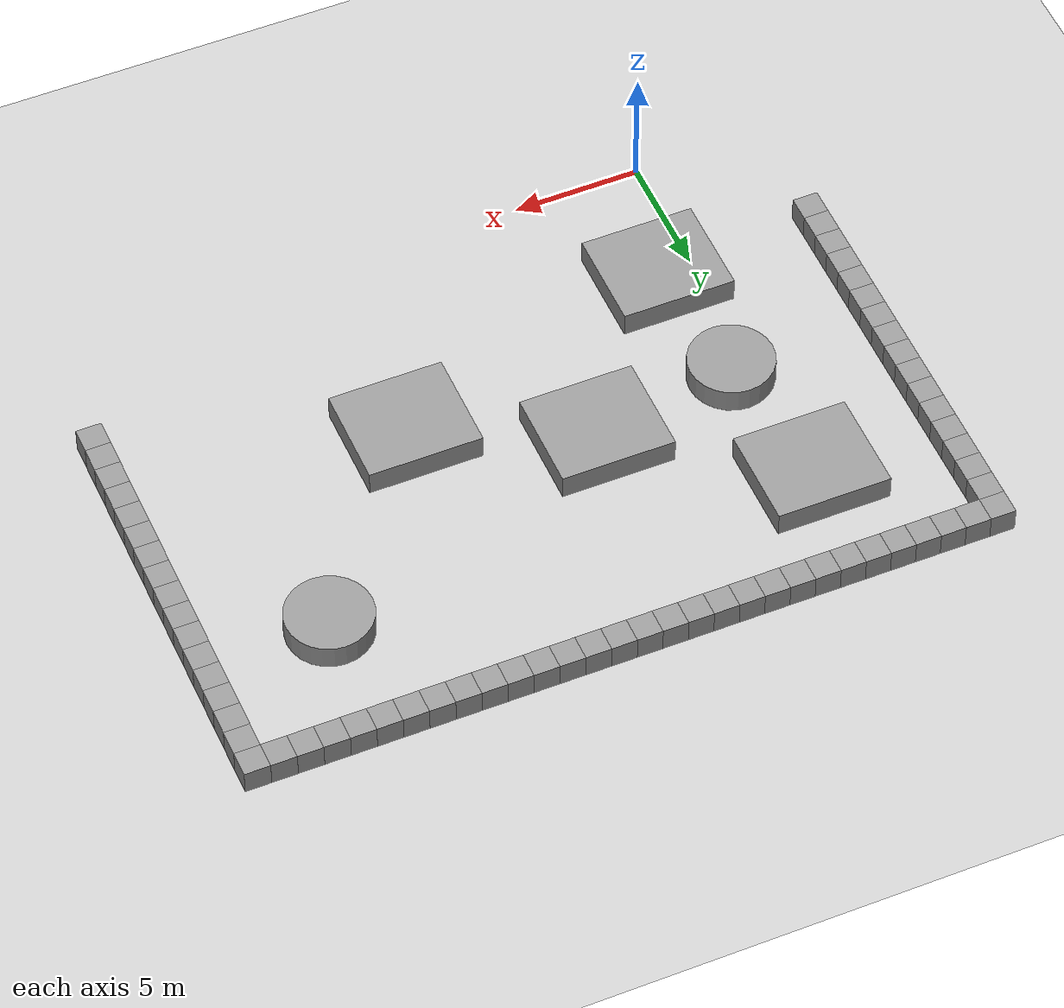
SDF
<sdf version="1.6">
 <world name="default">
  <model name="ground_plane">
   <static>1</static>
   <link name="link">
    <collision name="collision">
     <geometry><plane><normal>0 0 1</normal><size>100 100</size></plane></geometry>
     <surface><friction><ode><mu>100</mu><mu2>50</mu2></ode></friction></surface>
    </collision>
    <visual name="visual">
     <cast_shadows>0</cast_shadows>
     <geometry><plane><normal>0 0 1</normal><size>100 100</size></plane></geometry>
     <material>
      <script><uri>file://media/materials/scripts/gazebo.material</uri><name>Gazebo/Grey</name></script>
     </material>
    </visual>
    <velocity_decay><linear>0</linear><angular>0</angular></velocity_decay>
   </link>
  </model>
  <model name="unit_box_1">
   <pose>-5 5 0.5 0 0 0</pose>
   <static>1</static>
   <link name="link">
    <inertial>
     <mass>1</mass>
     <inertia><ixx>1</ixx><ixy>0</ixy><ixz>0</ixz><iyy>1</iyy><iyz>0</iyz><izz>1</izz></inertia>
    </inertial>
    <collision name="collision"><geometry><box><size>1 1 1</size></box></geometry></collision>
    <visual name="visual">
     <geometry><box><size>1 1 1</size></box></geometry>
     <material>
      <script><uri>file://media/materials/scripts/gazebo.material</uri><name>Gazebo/Grey</name></script>
     </material>
    </visual>
    <velocity_decay><linear>0</linear><angular>0</angular></velocity_decay>
   </link>
   <static>1</static>
  </model>
  <model name="unit_box_61">
   <pose>-5 6 0.5 0 0 0</pose>
   <static>1</static>
   <link name="link">
    <inertial>
     <mass>1</mass>
     <inertia><ixx>1</ixx><ixy>0</ixy><ixz>0</ixz><iyy>1</iyy><iyz>0</iyz><izz>1</izz></inertia>
    </inertial>
    <collision name="collision"><geometry><box><size>1 1 1</size></box></geometry></collision>
    <visual name="visual">
     <geometry><box><size>1 1 1</size></box></geometry>
     <material>
      <script><uri>file://media/materials/scripts/gazebo.material</uri><name>Gazebo/Grey</name></script>
     </material>
    </visual>
    <velocity_decay><linear>0</linear><angular>0</angular></velocity_decay>
   </link>
   <static>1</static>
  </model>
  <model name="unit_box_67">
   <pose>-5 7 0.5 0 0 0</pose>
   <static>1</static>
   <link name="link">
    <inertial>
     <mass>1</mass>
     <inertia><ixx>1</ixx><ixy>0</ixy><ixz>0</ixz><iyy>1</iyy><iyz>0</iyz><izz>1</izz></inertia>
    </inertial>
    <collision name="collision"><geometry><box><size>1 1 1</size></box></geometry></collision>
    <visual name="visual">
     <geometry><box><size>1 1 1</size></box></geometry>
     <material>
      <script><uri>file://media/materials/scripts/gazebo.material</uri><name>Gazebo/Grey</name></script>
     </material>
    </visual>
    <velocity_decay><linear>0</linear><angular>0</angular></velocity_decay>
   </link>
   <static>1</static>
  </model>
  <model name="unit_box_68">
   <pose>-5 8 0.5 0 0 0</pose>
   <static>1</static>
   <link name="link">
    <inertial>
     <mass>1</mass>
     <inertia><ixx>1</ixx><ixy>0</ixy><ixz>0</ixz><iyy>1</iyy><iyz>0</iyz><izz>1</izz></inertia>
    </inertial>
    <collision name="collision"><geometry><box><size>1 1 1</size></box></geometry></collision>
    <visual name="visual">
     <geometry><box><size>1 1 1</size></box></geometry>
     <material>
      <script><uri>file://media/materials/scripts/gazebo.material</uri><name>Gazebo/Grey</name></script>
     </material>
    </visual>
    <velocity_decay><linear>0</linear><angular>0</angular></velocity_decay>
   </link>
   <static>1</static>
  </model>
  <model name="unit_box_69">
   <pose>-5 9 0.5 0 0 0</pose>
   <static>1</static>
   <link name="link">
    <inertial>
     <mass>1</mass>
     <inertia><ixx>1</ixx><ixy>0</ixy><ixz>0</ixz><iyy>1</iyy><iyz>0</iyz><izz>1</izz></inertia>
    </inertial>
    <collision name="collision"><geometry><box><size>1 1 1</size></box></geometry></collision>
    <visual name="visual">
     <geometry><box><size>1 1 1</size></box></geometry>
     <material>
      <script><uri>file://media/materials/scripts/gazebo.material</uri><name>Gazebo/Grey</name></script>
     </material>
    </visual>
    <velocity_decay><linear>0</linear><angular>0</angular></velocity_decay>
   </link>
   <static>1</static>
  </model>
  <model name="unit_box_72">
   <pose>-5 10 0.5 0 0 0</pose>
   <static>1</static>
   <link name="link">
    <inertial>
     <mass>1</mass>
     <inertia><ixx>1</ixx><ixy>0</ixy><ixz>0</ixz><iyy>1</iyy><iyz>0</iyz><izz>1</izz></inertia>
    </inertial>
    <collision name="collision"><geometry><box><size>1 1 1</size></box></geometry></collision>
    <visual name="visual">
     <geometry><box><size>1 1 1</size></box></geometry>
     <material>
      <script><uri>file://media/materials/scripts/gazebo.material</uri><name>Gazebo/Grey</name></script>
     </material>
    </visual>
    <velocity_decay><linear>0</linear><angular>0</angular></velocity_decay>
   </link>
   <static>1</static>
  </model>
  <model name="unit_box_73">
   <pose>-5 11 0.5 0 0 0</pose>
   <static>1</static>
   <link name="link">
    <inertial>
     <mass>1</mass>
     <inertia><ixx>1</ixx><ixy>0</ixy><ixz>0</ixz><iyy>1</iyy><iyz>0</iyz><izz>1</izz></inertia>
    </inertial>
    <collision name="collision"><geometry><box><size>1 1 1</size></box></geometry></collision>
    <visual name="visual">
     <geometry><box><size>1 1 1</size></box></geometry>
     <material>
      <script><uri>file://media/materials/scripts/gazebo.material</uri><name>Gazebo/Grey</name></script>
     </material>
    </visual>
    <velocity_decay><linear>0</linear><angular>0</angular></velocity_decay>
   </link>
   <static>1</static>
  </model>
  <model name="unit_box_74">
   <pose>-5 12 0.5 0 0 0</pose>
   <static>1</static>
   <link name="link">
    <inertial>
     <mass>1</mass>
     <inertia><ixx>1</ixx><ixy>0</ixy><ixz>0</ixz><iyy>1</iyy><iyz>0</iyz><izz>1</izz></inertia>
    </inertial>
    <collision name="collision"><geometry><box><size>1 1 1</size></box></geometry></collision>
    <visual name="visual">
     <geometry><box><size>1 1 1</size></box></geometry>
     <material>
      <script><uri>file://media/materials/scripts/gazebo.material</uri><name>Gazebo/Grey</name></script>
     </material>
    </visual>
    <velocity_decay><linear>0</linear><angular>0</angular></velocity_decay>
   </link>
   <static>1</static>
  </model>
  <model name="unit_box_75">
   <pose>-5 13 0.5 0 0 0</pose>
   <static>1</static>
   <link name="link">
    <inertial>
     <mass>1</mass>
     <inertia><ixx>1</ixx><ixy>0</ixy><ixz>0</ixz><iyy>1</iyy><iyz>0</iyz><izz>1</izz></inertia>
    </inertial>
    <collision name="collision"><geometry><box><size>1 1 1</size></box></geometry></collision>
    <visual name="visual">
     <geometry><box><size>1 1 1</size></box></geometry>
     <material>
      <script><uri>file://media/materials/scripts/gazebo.material</uri><name>Gazebo/Grey</name></script>
     </material>
    </visual>
    <velocity_decay><linear>0</linear><angular>0</angular></velocity_decay>
   </link>
   <static>1</static>
  </model>
  <model name="unit_box_76">
   <pose>-5 14 0.5 0 0 0</pose>
   <static>1</static>
   <link name="link">
    <inertial>
     <mass>1</mass>
     <inertia><ixx>1</ixx><ixy>0</ixy><ixz>0</ixz><iyy>1</iyy><iyz>0</iyz><izz>1</izz></inertia>
    </inertial>
    <collision name="collision"><geometry><box><size>1 1 1</size></box></geometry></collision>
    <visual name="visual">
     <geometry><box><size>1 1 1</size></box></geometry>
     <material>
      <script><uri>file://media/materials/scripts/gazebo.material</uri><name>Gazebo/Grey</name></script>
     </material>
    </visual>
    <velocity_decay><linear>0</linear><angular>0</angular></velocity_decay>
   </link>
   <static>1</static>
  </model>
  <model name="unit_box_77">
   <pose>-5 15 0.5 0 0 0</pose>
   <static>1</static>
   <link name="link">
    <inertial>
     <mass>1</mass>
     <inertia><ixx>1</ixx><ixy>0</ixy><ixz>0</ixz><iyy>1</iyy><iyz>0</iyz><izz>1</izz></inertia>
    </inertial>
    <collision name="collision"><geometry><box><size>1 1 1</size></box></geometry></collision>
    <visual name="visual">
     <geometry><box><size>1 1 1</size></box></geometry>
     <material>
      <script><uri>file://media/materials/scripts/gazebo.material</uri><name>Gazebo/Grey</name></script>
     </material>
    </visual>
    <velocity_decay><linear>0</linear><angular>0</angular></velocity_decay>
   </link>
   <static>1</static>
  </model>
  <model name="unit_box_78">
   <pose>-5 16 0.5 0 0 0</pose>
   <static>1</static>
   <link name="link">
    <inertial>
     <mass>1</mass>
     <inertia><ixx>1</ixx><ixy>0</ixy><ixz>0</ixz><iyy>1</iyy><iyz>0</iyz><izz>1</izz></inertia>
    </inertial>
    <collision name="collision"><geometry><box><size>1 1 1</size></box></geometry></collision>
    <visual name="visual">
     <geometry><box><size>1 1 1</size></box></geometry>
     <material>
      <script><uri>file://media/materials/scripts/gazebo.material</uri><name>Gazebo/Grey</name></script>
     </material>
    </visual>
    <velocity_decay><linear>0</linear><angular>0</angular></velocity_decay>
   </link>
   <static>1</static>
  </model>
  <model name="unit_box_79">
   <pose>-5 17 0.5 0 0 0</pose>
   <static>1</static>
   <link name="link">
    <inertial>
     <mass>1</mass>
     <inertia><ixx>1</ixx><ixy>0</ixy><ixz>0</ixz><iyy>1</iyy><iyz>0</iyz><izz>1</izz></inertia>
    </inertial>
    <collision name="collision"><geometry><box><size>1 1 1</size></box></geometry></collision>
    <visual name="visual">
     <geometry><box><size>1 1 1</size></box></geometry>
     <material>
      <script><uri>file://media/materials/scripts/gazebo.material</uri><name>Gazebo/Grey</name></script>
     </material>
    </visual>
    <velocity_decay><linear>0</linear><angular>0</angular></velocity_decay>
   </link>
   <static>1</static>
  </model>
  <model name="unit_box_80">
   <pose>-5 18 0.5 0 0 0</pose>
   <static>1</static>
   <link name="link">
    <inertial>
     <mass>1</mass>
     <inertia><ixx>1</ixx><ixy>0</ixy><ixz>0</ixz><iyy>1</iyy><iyz>0</iyz><izz>1</izz></inertia>
    </inertial>
    <collision name="collision"><geometry><box><size>1 1 1</size></box></geometry></collision>
    <visual name="visual">
     <geometry><box><size>1 1 1</size></box></geometry>
     <material>
      <script><uri>file://media/materials/scripts/gazebo.material</uri><name>Gazebo/Grey</name></script>
     </material>
    </visual>
    <velocity_decay><linear>0</linear><angular>0</angular></velocity_decay>
   </link>
   <static>1</static>
  </model>
  <model name="unit_box_96">
   <pose>-5 19 0.5 0 0 0</pose>
   <static>1</static>
   <link name="link">
    <inertial>
     <mass>1</mass>
     <inertia><ixx>1</ixx><ixy>0</ixy><ixz>0</ixz><iyy>1</iyy><iyz>0</iyz><izz>1</izz></inertia>
    </inertial>
    <collision name="collision"><geometry><box><size>1 1 1</size></box></geometry></collision>
    <visual name="visual">
     <geometry><box><size>1 1 1</size></box></geometry>
     <material>
      <script><uri>file://media/materials/scripts/gazebo.material</uri><name>Gazebo/Grey</name></script>
     </material>
    </visual>
    <velocity_decay><linear>0</linear><angular>0</angular></velocity_decay>
   </link>
   <static>1</static>
  </model>
  <model name="unit_box_97">
   <pose>-5 20 0.5 0 0 0</pose>
   <static>1</static>
   <link name="link">
    <inertial>
     <mass>1</mass>
     <inertia><ixx>1</ixx><ixy>0</ixy><ixz>0</ixz><iyy>1</iyy><iyz>0</iyz><izz>1</izz></inertia>
    </inertial>
    <collision name="collision"><geometry><box><size>1 1 1</size></box></geometry></collision>
    <visual name="visual">
     <geometry><box><size>1 1 1</size></box></geometry>
     <material>
      <script><uri>file://media/materials/scripts/gazebo.material</uri><name>Gazebo/Grey</name></script>
     </material>
    </visual>
    <velocity_decay><linear>0</linear><angular>0</angular></velocity_decay>
   </link>
   <static>1</static>
  </model>
  <model name="unit_box_98">
   <pose>-5 21 0.5 0 0 0</pose>
   <static>1</static>
   <link name="link">
    <inertial>
     <mass>1</mass>
     <inertia><ixx>1</ixx><ixy>0</ixy><ixz>0</ixz><iyy>1</iyy><iyz>0</iyz><izz>1</izz></inertia>
    </inertial>
    <collision name="collision"><geometry><box><size>1 1 1</size></box></geometry></collision>
    <visual name="visual">
     <geometry><box><size>1 1 1</size></box></geometry>
     <material>
      <script><uri>file://media/materials/scripts/gazebo.material</uri><name>Gazebo/Grey</name></script>
     </material>
    </visual>
    <velocity_decay><linear>0</linear><angular>0</angular></velocity_decay>
   </link>
   <static>1</static>
  </model>
  <model name="unit_box_99">
   <pose>-4 21 0.5 0 0 0</pose>
   <static>1</static>
   <link name="link">
    <inertial>
     <mass>1</mass>
     <inertia><ixx>1</ixx><ixy>0</ixy><ixz>0</ixz><iyy>1</iyy><iyz>0</iyz><izz>1</izz></inertia>
    </inertial>
    <collision name="collision"><geometry><box><size>1 1 1</size></box></geometry></collision>
    <visual name="visual">
     <geometry><box><size>1 1 1</size></box></geometry>
     <material>
      <script><uri>file://media/materials/scripts/gazebo.material</uri><name>Gazebo/Grey</name></script>
     </material>
    </visual>
    <velocity_decay><linear>0</linear><angular>0</angular></velocity_decay>
   </link>
   <static>1</static>
  </model>
  <model name="unit_box_100">
   <pose>-3 21 0.5 0 0 0</pose>
   <static>1</static>
   <link name="link">
    <inertial>
     <mass>1</mass>
     <inertia><ixx>1</ixx><ixy>0</ixy><ixz>0</ixz><iyy>1</iyy><iyz>0</iyz><izz>1</izz></inertia>
    </inertial>
    <collision name="collision"><geometry><box><size>1 1 1</size></box></geometry></collision>
    <visual name="visual">
     <geometry><box><size>1 1 1</size></box></geometry>
     <material>
      <script><uri>file://media/materials/scripts/gazebo.material</uri><name>Gazebo/Grey</name></script>
     </material>
    </visual>
    <velocity_decay><linear>0</linear><angular>0</angular></velocity_decay>
   </link>
   <static>1</static>
  </model>
  <model name="unit_box_101">
   <pose>-2 21 0.5 0 0 0</pose>
   <static>1</static>
   <link name="link">
    <inertial>
     <mass>1</mass>
     <inertia><ixx>1</ixx><ixy>0</ixy><ixz>0</ixz><iyy>1</iyy><iyz>0</iyz><izz>1</izz></inertia>
    </inertial>
    <collision name="collision"><geometry><box><size>1 1 1</size></box></geometry></collision>
    <visual name="visual">
     <geometry><box><size>1 1 1</size></box></geometry>
     <material>
      <script><uri>file://media/materials/scripts/gazebo.material</uri><name>Gazebo/Grey</name></script>
     </material>
    </visual>
    <velocity_decay><linear>0</linear><angular>0</angular></velocity_decay>
   </link>
   <static>1</static>
  </model>
  <model name="unit_box_102">
   <pose>-1 21 0.5 0 0 0</pose>
   <static>1</static>
   <link name="link">
    <inertial>
     <mass>1</mass>
     <inertia><ixx>1</ixx><ixy>0</ixy><ixz>0</ixz><iyy>1</iyy><iyz>0</iyz><izz>1</izz></inertia>
    </inertial>
    <collision name="collision"><geometry><box><size>1 1 1</size></box></geometry></collision>
    <visual name="visual">
     <geometry><box><size>1 1 1</size></box></geometry>
     <material>
      <script><uri>file://media/materials/scripts/gazebo.material</uri><name>Gazebo/Grey</name></script>
     </material>
    </visual>
    <velocity_decay><linear>0</linear><angular>0</angular></velocity_decay>
   </link>
   <static>1</static>
  </model>
  <model name="unit_box_103">
   <pose>0 21 0.5 0 0 0</pose>
   <static>1</static>
   <link name="link">
    <inertial>
     <mass>1</mass>
     <inertia><ixx>1</ixx><ixy>0</ixy><ixz>0</ixz><iyy>1</iyy><iyz>0</iyz><izz>1</izz></inertia>
    </inertial>
    <collision name="collision"><geometry><box><size>1 1 1</size></box></geometry></collision>
    <visual name="visual">
     <geometry><box><size>1 1 1</size></box></geometry>
     <material>
      <script><uri>file://media/materials/scripts/gazebo.material</uri><name>Gazebo/Grey</name></script>
     </material>
    </visual>
    <velocity_decay><linear>0</linear><angular>0</angular></velocity_decay>
   </link>
   <static>1</static>
  </model>
  <model name="unit_box_104">
   <pose>1 21 0.5 0 0 0</pose>
   <static>1</static>
   <link name="link">
    <inertial>
     <mass>1</mass>
     <inertia><ixx>1</ixx><ixy>0</ixy><ixz>0</ixz><iyy>1</iyy><iyz>0</iyz><izz>1</izz></inertia>
    </inertial>
    <collision name="collision"><geometry><box><size>1 1 1</size></box></geometry></collision>
    <visual name="visual">
     <geometry><box><size>1 1 1</size></box></geometry>
     <material>
      <script><uri>file://media/materials/scripts/gazebo.material</uri><name>Gazebo/Grey</name></script>
     </material>
    </visual>
    <velocity_decay><linear>0</linear><angular>0</angular></velocity_decay>
   </link>
   <static>1</static>
  </model>
  <model name="unit_box_105">
   <pose>2 21 0.5 0 0 0</pose>
   <static>1</static>
   <link name="link">
    <inertial>
     <mass>1</mass>
     <inertia><ixx>1</ixx><ixy>0</ixy><ixz>0</ixz><iyy>1</iyy><iyz>0</iyz><izz>1</izz></inertia>
    </inertial>
    <collision name="collision"><geometry><box><size>1 1 1</size></box></geometry></collision>
    <visual name="visual">
     <geometry><box><size>1 1 1</size></box></geometry>
     <material>
      <script><uri>file://media/materials/scripts/gazebo.material</uri><name>Gazebo/Grey</name></script>
     </material>
    </visual>
    <velocity_decay><linear>0</linear><angular>0</angular></velocity_decay>
   </link>
   <static>1</static>
  </model>
  <model name="unit_box_106">
   <pose>3 21 0.5 0 0 0</pose>
   <static>1</static>
   <link name="link">
    <inertial>
     <mass>1</mass>
     <inertia><ixx>1</ixx><ixy>0</ixy><ixz>0</ixz><iyy>1</iyy><iyz>0</iyz><izz>1</izz></inertia>
    </inertial>
    <collision name="collision"><geometry><box><size>1 1 1</size></box></geometry></collision>
    <visual name="visual">
     <geometry><box><size>1 1 1</size></box></geometry>
     <material>
      <script><uri>file://media/materials/scripts/gazebo.material</uri><name>Gazebo/Grey</name></script>
     </material>
    </visual>
    <velocity_decay><linear>0</linear><angular>0</angular></velocity_decay>
   </link>
   <static>1</static>
  </model>
  <model name="unit_box_107">
   <pose>4 21 0.5 0 0 0</pose>
   <static>1</static>
   <link name="link">
    <inertial>
     <mass>1</mass>
     <inertia><ixx>1</ixx><ixy>0</ixy><ixz>0</ixz><iyy>1</iyy><iyz>0</iyz><izz>1</izz></inertia>
    </inertial>
    <collision name="collision"><geometry><box><size>1 1 1</size></box></geometry></collision>
    <visual name="visual">
     <geometry><box><size>1 1 1</size></box></geometry>
     <material>
      <script><uri>file://media/materials/scripts/gazebo.material</uri><name>Gazebo/Grey</name></script>
     </material>
    </visual>
    <velocity_decay><linear>0</linear><angular>0</angular></velocity_decay>
   </link>
   <static>1</static>
  </model>
  <model name="unit_box_108">
   <pose>5 21 0.5 0 0 0</pose>
   <static>1</static>
   <link name="link">
    <inertial>
     <mass>1</mass>
     <inertia><ixx>1</ixx><ixy>0</ixy><ixz>0</ixz><iyy>1</iyy><iyz>0</iyz><izz>1</izz></inertia>
    </inertial>
    <collision name="collision"><geometry><box><size>1 1 1</size></box></geometry></collision>
    <visual name="visual">
     <geometry><box><size>1 1 1</size></box></geometry>
     <material>
      <script><uri>file://media/materials/scripts/gazebo.material</uri><name>Gazebo/Grey</name></script>
     </material>
    </visual>
    <velocity_decay><linear>0</linear><angular>0</angular></velocity_decay>
   </link>
   <static>1</static>
  </model>
  <model name="unit_box_109">
   <pose>6 21 0.5 0 0 0</pose>
   <static>1</static>
   <link name="link">
    <inertial>
     <mass>1</mass>
     <inertia><ixx>1</ixx><ixy>0</ixy><ixz>0</ixz><iyy>1</iyy><iyz>0</iyz><izz>1</izz></inertia>
    </inertial>
    <collision name="collision"><geometry><box><size>1 1 1</size></box></geometry></collision>
    <visual name="visual">
     <geometry><box><size>1 1 1</size></box></geometry>
     <material>
      <script><uri>file://media/materials/scripts/gazebo.material</uri><name>Gazebo/Grey</name></script>
     </material>
    </visual>
    <velocity_decay><linear>0</linear><angular>0</angular></velocity_decay>
   </link>
   <static>1</static>
  </model>
  <model name="unit_box_110">
   <pose>7 21 0.5 0 0 0</pose>
   <static>1</static>
   <link name="link">
    <inertial>
     <mass>1</mass>
     <inertia><ixx>1</ixx><ixy>0</ixy><ixz>0</ixz><iyy>1</iyy><iyz>0</iyz><izz>1</izz></inertia>
    </inertial>
    <collision name="collision"><geometry><box><size>1 1 1</size></box></geometry></collision>
    <visual name="visual">
     <geometry><box><size>1 1 1</size></box></geometry>
     <material>
      <script><uri>file://media/materials/scripts/gazebo.material</uri><name>Gazebo/Grey</name></script>
     </material>
    </visual>
    <velocity_decay><linear>0</linear><angular>0</angular></velocity_decay>
   </link>
   <static>1</static>
  </model>
  <model name="unit_box_111">
   <pose>8 21 0.5 0 0 0</pose>
   <static>1</static>
   <link name="link">
    <inertial>
     <mass>1</mass>
     <inertia><ixx>1</ixx><ixy>0</ixy><ixz>0</ixz><iyy>1</iyy><iyz>0</iyz><izz>1</izz></inertia>
    </inertial>
    <collision name="collision"><geometry><box><size>1 1 1</size></box></geometry></collision>
    <visual name="visual">
     <geometry><box><size>1 1 1</size></box></geometry>
     <material>
      <script><uri>file://media/materials/scripts/gazebo.material</uri><name>Gazebo/Grey</name></script>
     </material>
    </visual>
    <velocity_decay><linear>0</linear><angular>0</angular></velocity_decay>
   </link>
   <static>1</static>
  </model>
  <model name="unit_box_112">
   <pose>9 21 0.5 0 0 0</pose>
   <static>1</static>
   <link name="link">
    <inertial>
     <mass>1</mass>
     <inertia><ixx>1</ixx><ixy>0</ixy><ixz>0</ixz><iyy>1</iyy><iyz>0</iyz><izz>1</izz></inertia>
    </inertial>
    <collision name="collision"><geometry><box><size>1 1 1</size></box></geometry></collision>
    <visual name="visual">
     <geometry><box><size>1 1 1</size></box></geometry>
     <material>
      <script><uri>file://media/materials/scripts/gazebo.material</uri><name>Gazebo/Grey</name></script>
     </material>
    </visual>
    <velocity_decay><linear>0</linear><angular>0</angular></velocity_decay>
   </link>
   <static>1</static>
  </model>
  <model name="unit_box_113">
   <pose>10 21 0.5 0 0 0</pose>
   <static>1</static>
   <link name="link">
    <inertial>
     <mass>1</mass>
     <inertia><ixx>1</ixx><ixy>0</ixy><ixz>0</ixz><iyy>1</iyy><iyz>0</iyz><izz>1</izz></inertia>
    </inertial>
    <collision name="collision"><geometry><box><size>1 1 1</size></box></geometry></collision>
    <visual name="visual">
     <geometry><box><size>1 1 1</size></box></geometry>
     <material>
      <script><uri>file://media/materials/scripts/gazebo.material</uri><name>Gazebo/Grey</name></script>
     </material>
    </visual>
    <velocity_decay><linear>0</linear><angular>0</angular></velocity_decay>
   </link>
   <static>1</static>
  </model>
  <model name="unit_box_114">
   <pose>11 21 0.5 0 0 0</pose>
   <static>1</static>
   <link name="link">
    <inertial>
     <mass>1</mass>
     <inertia><ixx>1</ixx><ixy>0</ixy><ixz>0</ixz><iyy>1</iyy><iyz>0</iyz><izz>1</izz></inertia>
    </inertial>
    <collision name="collision"><geometry><box><size>1 1 1</size></box></geometry></collision>
    <visual name="visual">
     <geometry><box><size>1 1 1</size></box></geometry>
     <material>
      <script><uri>file://media/materials/scripts/gazebo.material</uri><name>Gazebo/Grey</name></script>
     </material>
    </visual>
    <velocity_decay><linear>0</linear><angular>0</angular></velocity_decay>
   </link>
   <static>1</static>
  </model>
  <model name="unit_box_115">
   <pose>12 21 0.5 0 0 0</pose>
   <static>1</static>
   <link name="link">
    <inertial>
     <mass>1</mass>
     <inertia><ixx>1</ixx><ixy>0</ixy><ixz>0</ixz><iyy>1</iyy><iyz>0</iyz><izz>1</izz></inertia>
    </inertial>
    <collision name="collision"><geometry><box><size>1 1 1</size></box></geometry></collision>
    <visual name="visual">
     <geometry><box><size>1 1 1</size></box></geometry>
     <material>
      <script><uri>file://media/materials/scripts/gazebo.material</uri><name>Gazebo/Grey</name></script>
     </material>
    </visual>
    <velocity_decay><linear>0</linear><angular>0</angular></velocity_decay>
   </link>
   <static>1</static>
  </model>
  <model name="unit_box_116">
   <pose>13 21 0.5 0 0 0</pose>
   <static>1</static>
   <link name="link">
    <inertial>
     <mass>1</mass>
     <inertia><ixx>1</ixx><ixy>0</ixy><ixz>0</ixz><iyy>1</iyy><iyz>0</iyz><izz>1</izz></inertia>
    </inertial>
    <collision name="collision"><geometry><box><size>1 1 1</size></box></geometry></collision>
    <visual name="visual">
     <geometry><box><size>1 1 1</size></box></geometry>
     <material>
      <script><uri>file://media/materials/scripts/gazebo.material</uri><name>Gazebo/Grey</name></script>
     </material>
    </visual>
    <velocity_decay><linear>0</linear><angular>0</angular></velocity_decay>
   </link>
   <static>1</static>
  </model>
  <model name="unit_box_121">
   <pose>14 21 0.5 0 0 0</pose>
   <static>1</static>
   <link name="link">
    <inertial>
     <mass>1</mass>
     <inertia><ixx>1</ixx><ixy>0</ixy><ixz>0</ixz><iyy>1</iyy><iyz>0</iyz><izz>1</izz></inertia>
    </inertial>
    <collision name="collision"><geometry><box><size>1 1 1</size></box></geometry></collision>
    <visual name="visual">
     <geometry><box><size>1 1 1</size></box></geometry>
     <material>
      <script><uri>file://media/materials/scripts/gazebo.material</uri><name>Gazebo/Grey</name></script>
     </material>
    </visual>
    <velocity_decay><linear>0</linear><angular>0</angular></velocity_decay>
   </link>
   <static>1</static>
  </model>
  <model name="unit_box_134">
   <pose>15 21 0.5 0 0 0</pose>
   <static>1</static>
   <link name="link">
    <inertial>
     <mass>1</mass>
     <inertia><ixx>1</ixx><ixy>0</ixy><ixz>0</ixz><iyy>1</iyy><iyz>0</iyz><izz>1</izz></inertia>
    </inertial>
    <collision name="collision"><geometry><box><size>1 1 1</size></box></geometry></collision>
    <visual name="visual">
     <geometry><box><size>1 1 1</size></box></geometry>
     <material>
      <script><uri>file://media/materials/scripts/gazebo.material</uri><name>Gazebo/Grey</name></script>
     </material>
    </visual>
    <velocity_decay><linear>0</linear><angular>0</angular></velocity_decay>
   </link>
   <static>1</static>
  </model>
  <model name="unit_box_135">
   <pose>16 21 0.5 0 0 0</pose>
   <static>1</static>
   <link name="link">
    <inertial>
     <mass>1</mass>
     <inertia><ixx>1</ixx><ixy>0</ixy><ixz>0</ixz><iyy>1</iyy><iyz>0</iyz><izz>1</izz></inertia>
    </inertial>
    <collision name="collision"><geometry><box><size>1 1 1</size></box></geometry></collision>
    <visual name="visual">
     <geometry><box><size>1 1 1</size></box></geometry>
     <material>
      <script><uri>file://media/materials/scripts/gazebo.material</uri><name>Gazebo/Grey</name></script>
     </material>
    </visual>
    <velocity_decay><linear>0</linear><angular>0</angular></velocity_decay>
   </link>
   <static>1</static>
  </model>
  <model name="unit_box_136">
   <pose>17 21 0.5 0 0 0</pose>
   <static>1</static>
   <link name="link">
    <inertial>
     <mass>1</mass>
     <inertia><ixx>1</ixx><ixy>0</ixy><ixz>0</ixz><iyy>1</iyy><iyz>0</iyz><izz>1</izz></inertia>
    </inertial>
    <collision name="collision"><geometry><box><size>1 1 1</size></box></geometry></collision>
    <visual name="visual">
     <geometry><box><size>1 1 1</size></box></geometry>
     <material>
      <script><uri>file://media/materials/scripts/gazebo.material</uri><name>Gazebo/Grey</name></script>
     </material>
    </visual>
    <velocity_decay><linear>0</linear><angular>0</angular></velocity_decay>
   </link>
   <static>1</static>
  </model>
  <model name="unit_box_137">
   <pose>18 21 0.5 0 0 0</pose>
   <static>1</static>
   <link name="link">
    <inertial>
     <mass>1</mass>
     <inertia><ixx>1</ixx><ixy>0</ixy><ixz>0</ixz><iyy>1</iyy><iyz>0</iyz><izz>1</izz></inertia>
    </inertial>
    <collision name="collision"><geometry><box><size>1 1 1</size></box></geometry></collision>
    <visual name="visual">
     <geometry><box><size>1 1 1</size></box></geometry>
     <material>
      <script><uri>file://media/materials/scripts/gazebo.material</uri><name>Gazebo/Grey</name></script>
     </material>
    </visual>
    <velocity_decay><linear>0</linear><angular>0</angular></velocity_decay>
   </link>
   <static>1</static>
  </model>
  <model name="unit_box_146">
   <pose>19 21 0.5 0 0 0</pose>
   <static>1</static>
   <link name="link">
    <inertial>
     <mass>1</mass>
     <inertia><ixx>1</ixx><ixy>0</ixy><ixz>0</ixz><iyy>1</iyy><iyz>0</iyz><izz>1</izz></inertia>
    </inertial>
    <collision name="collision"><geometry><box><size>1 1 1</size></box></geometry></collision>
    <visual name="visual">
     <geometry><box><size>1 1 1</size></box></geometry>
     <material>
      <script><uri>file://media/materials/scripts/gazebo.material</uri><name>Gazebo/Grey</name></script>
     </material>
    </visual>
    <velocity_decay><linear>0</linear><angular>0</angular></velocity_decay>
   </link>
   <static>1</static>
  </model>
  <model name="unit_box_147">
   <pose>20 21 0.5 0 0 0</pose>
   <static>1</static>
   <link name="link">
    <inertial>
     <mass>1</mass>
     <inertia><ixx>1</ixx><ixy>0</ixy><ixz>0</ixz><iyy>1</iyy><iyz>0</iyz><izz>1</izz></inertia>
    </inertial>
    <collision name="collision"><geometry><box><size>1 1 1</size></box></geometry></collision>
    <visual name="visual">
     <geometry><box><size>1 1 1</size></box></geometry>
     <material>
      <script><uri>file://media/materials/scripts/gazebo.material</uri><name>Gazebo/Grey</name></script>
     </material>
    </visual>
    <velocity_decay><linear>0</linear><angular>0</angular></velocity_decay>
   </link>
   <static>1</static>
  </model>
  <model name="unit_box_148">
   <pose>21 21 0.5 0 0 0</pose>
   <static>1</static>
   <link name="link">
    <inertial>
     <mass>1</mass>
     <inertia><ixx>1</ixx><ixy>0</ixy><ixz>0</ixz><iyy>1</iyy><iyz>0</iyz><izz>1</izz></inertia>
    </inertial>
    <collision name="collision"><geometry><box><size>1 1 1</size></box></geometry></collision>
    <visual name="visual">
     <geometry><box><size>1 1 1</size></box></geometry>
     <material>
      <script><uri>file://media/materials/scripts/gazebo.material</uri><name>Gazebo/Grey</name></script>
     </material>
    </visual>
    <velocity_decay><linear>0</linear><angular>0</angular></velocity_decay>
   </link>
   <static>1</static>
  </model>
  <model name="unit_box_150">
   <pose>22 21 0.5 0 0 0</pose>
   <static>1</static>
   <link name="link">
    <inertial>
     <mass>1</mass>
     <inertia><ixx>1</ixx><ixy>0</ixy><ixz>0</ixz><iyy>1</iyy><iyz>0</iyz><izz>1</izz></inertia>
    </inertial>
    <collision name="collision"><geometry><box><size>1 1 1</size></box></geometry></collision>
    <visual name="visual">
     <geometry><box><size>1 1 1</size></box></geometry>
     <material>
      <script><uri>file://media/materials/scripts/gazebo.material</uri><name>Gazebo/Grey</name></script>
     </material>
    </visual>
    <velocity_decay><linear>0</linear><angular>0</angular></velocity_decay>
   </link>
   <static>1</static>
  </model>
  <model name="unit_box_151">
   <pose>23 21 0.5 0 0 0</pose>
   <static>1</static>
   <link name="link">
    <inertial>
     <mass>1</mass>
     <inertia><ixx>1</ixx><ixy>0</ixy><ixz>0</ixz><iyy>1</iyy><iyz>0</iyz><izz>1</izz></inertia>
    </inertial>
    <collision name="collision"><geometry><box><size>1 1 1</size></box></geometry></collision>
    <visual name="visual">
     <geometry><box><size>1 1 1</size></box></geometry>
     <material>
      <script><uri>file://media/materials/scripts/gazebo.material</uri><name>Gazebo/Grey</name></script>
     </material>
    </visual>
    <velocity_decay><linear>0</linear><angular>0</angular></velocity_decay>
   </link>
   <static>1</static>
  </model>
  <model name="unit_box_152">
   <pose>24 21 0.5 0 0 0</pose>
   <static>1</static>
   <link name="link">
    <inertial>
     <mass>1</mass>
     <inertia><ixx>1</ixx><ixy>0</ixy><ixz>0</ixz><iyy>1</iyy><iyz>0</iyz><izz>1</izz></inertia>
    </inertial>
    <collision name="collision"><geometry><box><size>1 1 1</size></box></geometry></collision>
    <visual name="visual">
     <geometry><box><size>1 1 1</size></box></geometry>
     <material>
      <script><uri>file://media/materials/scripts/gazebo.material</uri><name>Gazebo/Grey</name></script>
     </material>
    </visual>
    <velocity_decay><linear>0</linear><angular>0</angular></velocity_decay>
   </link>
   <static>1</static>
  </model>
  <model name="unit_box_153">
   <pose>24 20 0.5 0 0 0</pose>
   <static>1</static>
   <link name="link">
    <inertial>
     <mass>1</mass>
     <inertia><ixx>1</ixx><ixy>0</ixy><ixz>0</ixz><iyy>1</iyy><iyz>0</iyz><izz>1</izz></inertia>
    </inertial>
    <collision name="collision"><geometry><box><size>1 1 1</size></box></geometry></collision>
    <visual name="visual">
     <geometry><box><size>1 1 1</size></box></geometry>
     <material>
      <script><uri>file://media/materials/scripts/gazebo.material</uri><name>Gazebo/Grey</name></script>
     </material>
    </visual>
    <velocity_decay><linear>0</linear><angular>0</angular></velocity_decay>
   </link>
   <static>1</static>
  </model>
  <model name="unit_box_154">
   <pose>24 19 0.5 0 0 0</pose>
   <static>1</static>
   <link name="link">
    <inertial>
     <mass>1</mass>
     <inertia><ixx>1</ixx><ixy>0</ixy><ixz>0</ixz><iyy>1</iyy><iyz>0</iyz><izz>1</izz></inertia>
    </inertial>
    <collision name="collision"><geometry><box><size>1 1 1</size></box></geometry></collision>
    <visual name="visual">
     <geometry><box><size>1 1 1</size></box></geometry>
     <material>
      <script><uri>file://media/materials/scripts/gazebo.material</uri><name>Gazebo/Grey</name></script>
     </material>
    </visual>
    <velocity_decay><linear>0</linear><angular>0</angular></velocity_decay>
   </link>
   <static>1</static>
  </model>
  <model name="unit_box_155">
   <pose>24 18 0.5 0 0 0</pose>
   <static>1</static>
   <link name="link">
    <inertial>
     <mass>1</mass>
     <inertia><ixx>1</ixx><ixy>0</ixy><ixz>0</ixz><iyy>1</iyy><iyz>0</iyz><izz>1</izz></inertia>
    </inertial>
    <collision name="collision"><geometry><box><size>1 1 1</size></box></geometry></collision>
    <visual name="visual">
     <geometry><box><size>1 1 1</size></box></geometry>
     <material>
      <script><uri>file://media/materials/scripts/gazebo.material</uri><name>Gazebo/Grey</name></script>
     </material>
    </visual>
    <velocity_decay><linear>0</linear><angular>0</angular></velocity_decay>
   </link>
   <static>1</static>
  </model>
  <model name="unit_box_156">
   <pose>24 17 0.5 0 0 0</pose>
   <static>1</static>
   <link name="link">
    <inertial>
     <mass>1</mass>
     <inertia><ixx>1</ixx><ixy>0</ixy><ixz>0</ixz><iyy>1</iyy><iyz>0</iyz><izz>1</izz></inertia>
    </inertial>
    <collision name="collision"><geometry><box><size>1 1 1</size></box></geometry></collision>
    <visual name="visual">
     <geometry><box><size>1 1 1</size></box></geometry>
     <material>
      <script><uri>file://media/materials/scripts/gazebo.material</uri><name>Gazebo/Grey</name></script>
     </material>
    </visual>
    <velocity_decay><linear>0</linear><angular>0</angular></velocity_decay>
   </link>
   <static>1</static>
  </model>
  <model name="unit_box_157">
   <pose>24 16 0.5 0 0 0</pose>
   <static>1</static>
   <link name="link">
    <inertial>
     <mass>1</mass>
     <inertia><ixx>1</ixx><ixy>0</ixy><ixz>0</ixz><iyy>1</iyy><iyz>0</iyz><izz>1</izz></inertia>
    </inertial>
    <collision name="collision"><geometry><box><size>1 1 1</size></box></geometry></collision>
    <visual name="visual">
     <geometry><box><size>1 1 1</size></box></geometry>
     <material>
      <script><uri>file://media/materials/scripts/gazebo.material</uri><name>Gazebo/Grey</name></script>
     </material>
    </visual>
    <velocity_decay><linear>0</linear><angular>0</angular></velocity_decay>
   </link>
   <static>1</static>
  </model>
  <model name="unit_box_158">
   <pose>24 15 0.5 0 0 0</pose>
   <static>1</static>
   <link name="link">
    <inertial>
     <mass>1</mass>
     <inertia><ixx>1</ixx><ixy>0</ixy><ixz>0</ixz><iyy>1</iyy><iyz>0</iyz><izz>1</izz></inertia>
    </inertial>
    <collision name="collision"><geometry><box><size>1 1 1</size></box></geometry></collision>
    <visual name="visual">
     <geometry><box><size>1 1 1</size></box></geometry>
     <material>
      <script><uri>file://media/materials/scripts/gazebo.material</uri><name>Gazebo/Grey</name></script>
     </material>
    </visual>
    <velocity_decay><linear>0</linear><angular>0</angular></velocity_decay>
   </link>
   <static>1</static>
  </model>
  <model name="unit_box_159">
   <pose>24 14 0.5 0 0 0</pose>
   <static>1</static>
   <link name="link">
    <inertial>
     <mass>1</mass>
     <inertia><ixx>1</ixx><ixy>0</ixy><ixz>0</ixz><iyy>1</iyy><iyz>0</iyz><izz>1</izz></inertia>
    </inertial>
    <collision name="collision"><geometry><box><size>1 1 1</size></box></geometry></collision>
    <visual name="visual">
     <geometry><box><size>1 1 1</size></box></geometry>
     <material>
      <script><uri>file://media/materials/scripts/gazebo.material</uri><name>Gazebo/Grey</name></script>
     </material>
    </visual>
    <velocity_decay><linear>0</linear><angular>0</angular></velocity_decay>
   </link>
   <static>1</static>
  </model>
  <model name="unit_box_160">
   <pose>24 13 0.5 0 0 0</pose>
   <static>1</static>
   <link name="link">
    <inertial>
     <mass>1</mass>
     <inertia><ixx>1</ixx><ixy>0</ixy><ixz>0</ixz><iyy>1</iyy><iyz>0</iyz><izz>1</izz></inertia>
    </inertial>
    <collision name="collision"><geometry><box><size>1 1 1</size></box></geometry></collision>
    <visual name="visual">
     <geometry><box><size>1 1 1</size></box></geometry>
     <material>
      <script><uri>file://media/materials/scripts/gazebo.material</uri><name>Gazebo/Grey</name></script>
     </material>
    </visual>
    <velocity_decay><linear>0</linear><angular>0</angular></velocity_decay>
   </link>
   <static>1</static>
  </model>
  <model name="unit_box_161">
   <pose>24 12 0.5 0 0 0</pose>
   <static>1</static>
   <link name="link">
    <inertial>
     <mass>1</mass>
     <inertia><ixx>1</ixx><ixy>0</ixy><ixz>0</ixz><iyy>1</iyy><iyz>0</iyz><izz>1</izz></inertia>
    </inertial>
    <collision name="collision"><geometry><box><size>1 1 1</size></box></geometry></collision>
    <visual name="visual">
     <geometry><box><size>1 1 1</size></box></geometry>
     <material>
      <script><uri>file://media/materials/scripts/gazebo.material</uri><name>Gazebo/Grey</name></script>
     </material>
    </visual>
    <velocity_decay><linear>0</linear><angular>0</angular></velocity_decay>
   </link>
   <static>1</static>
  </model>
  <model name="unit_box_162">
   <pose>24 11 0.5 0 0 0</pose>
   <static>1</static>
   <link name="link">
    <inertial>
     <mass>1</mass>
     <inertia><ixx>1</ixx><ixy>0</ixy><ixz>0</ixz><iyy>1</iyy><iyz>0</iyz><izz>1</izz></inertia>
    </inertial>
    <collision name="collision"><geometry><box><size>1 1 1</size></box></geometry></collision>
    <visual name="visual">
     <geometry><box><size>1 1 1</size></box></geometry>
     <material>
      <script><uri>file://media/materials/scripts/gazebo.material</uri><name>Gazebo/Grey</name></script>
     </material>
    </visual>
    <velocity_decay><linear>0</linear><angular>0</angular></velocity_decay>
   </link>
   <static>1</static>
  </model>
  <model name="unit_box_188">
   <pose>24 10 0.5 0 0 0</pose>
   <static>1</static>
   <link name="link">
    <inertial>
     <mass>1</mass>
     <inertia><ixx>1</ixx><ixy>0</ixy><ixz>0</ixz><iyy>1</iyy><iyz>0</iyz><izz>1</izz></inertia>
    </inertial>
    <collision name="collision"><geometry><box><size>1 1 1</size></box></geometry></collision>
    <visual name="visual">
     <geometry><box><size>1 1 1</size></box></geometry>
     <material>
      <script><uri>file://media/materials/scripts/gazebo.material</uri><name>Gazebo/Grey</name></script>
     </material>
    </visual>
    <velocity_decay><linear>0</linear><angular>0</angular></velocity_decay>
   </link>
   <static>1</static>
  </model>
  <model name="unit_box_189">
   <pose>24 9 0.5 0 0 0</pose>
   <static>1</static>
   <link name="link">
    <inertial>
     <mass>1</mass>
     <inertia><ixx>1</ixx><ixy>0</ixy><ixz>0</ixz><iyy>1</iyy><iyz>0</iyz><izz>1</izz></inertia>
    </inertial>
    <collision name="collision"><geometry><box><size>1 1 1</size></box></geometry></collision>
    <visual name="visual">
     <geometry><box><size>1 1 1</size></box></geometry>
     <material>
      <script><uri>file://media/materials/scripts/gazebo.material</uri><name>Gazebo/Grey</name></script>
     </material>
    </visual>
    <velocity_decay><linear>0</linear><angular>0</angular></velocity_decay>
   </link>
   <static>1</static>
  </model>
  <model name="unit_box_190">
   <pose>24 8 0.5 0 0 0</pose>
   <static>1</static>
   <link name="link">
    <inertial>
     <mass>1</mass>
     <inertia><ixx>1</ixx><ixy>0</ixy><ixz>0</ixz><iyy>1</iyy><iyz>0</iyz><izz>1</izz></inertia>
    </inertial>
    <collision name="collision"><geometry><box><size>1 1 1</size></box></geometry></collision>
    <visual name="visual">
     <geometry><box><size>1 1 1</size></box></geometry>
     <material>
      <script><uri>file://media/materials/scripts/gazebo.material</uri><name>Gazebo/Grey</name></script>
     </material>
    </visual>
    <velocity_decay><linear>0</linear><angular>0</angular></velocity_decay>
   </link>
   <static>1</static>
  </model>
  <model name="unit_box_191">
   <pose>24 7 0.5 0 0 0</pose>
   <static>1</static>
   <link name="link">
    <inertial>
     <mass>1</mass>
     <inertia><ixx>1</ixx><ixy>0</ixy><ixz>0</ixz><iyy>1</iyy><iyz>0</iyz><izz>1</izz></inertia>
    </inertial>
    <collision name="collision"><geometry><box><size>1 1 1</size></box></geometry></collision>
    <visual name="visual">
     <geometry><box><size>1 1 1</size></box></geometry>
     <material>
      <script><uri>file://media/materials/scripts/gazebo.material</uri><name>Gazebo/Grey</name></script>
     </material>
    </visual>
    <velocity_decay><linear>0</linear><angular>0</angular></velocity_decay>
   </link>
   <static>1</static>
  </model>
  <model name="unit_box_192">
   <pose>24 6 0.5 0 0 0</pose>
   <static>1</static>
   <link name="link">
    <inertial>
     <mass>1</mass>
     <inertia><ixx>1</ixx><ixy>0</ixy><ixz>0</ixz><iyy>1</iyy><iyz>0</iyz><izz>1</izz></inertia>
    </inertial>
    <collision name="collision"><geometry><box><size>1 1 1</size></box></geometry></collision>
    <visual name="visual">
     <geometry><box><size>1 1 1</size></box></geometry>
     <material>
      <script><uri>file://media/materials/scripts/gazebo.material</uri><name>Gazebo/Grey</name></script>
     </material>
    </visual>
    <velocity_decay><linear>0</linear><angular>0</angular></velocity_decay>
   </link>
   <static>1</static>
  </model>
  <model name="unit_box_194">
   <pose>24 5 0.5 0 0 0</pose>
   <static>1</static>
   <link name="link">
    <inertial>
     <mass>1</mass>
     <inertia><ixx>1</ixx><ixy>0</ixy><ixz>0</ixz><iyy>1</iyy><iyz>0</iyz><izz>1</izz></inertia>
    </inertial>
    <collision name="collision"><geometry><box><size>1 1 1</size></box></geometry></collision>
    <visual name="visual">
     <geometry><box><size>1 1 1</size></box></geometry>
     <material>
      <script><uri>file://media/materials/scripts/gazebo.material</uri><name>Gazebo/Grey</name></script>
     </material>
    </visual>
    <velocity_decay><linear>0</linear><angular>0</angular></velocity_decay>
   </link>
   <static>1</static>
  </model>
  <model name="unit_box_0_clone">
   <pose>1.5 5.35 0.5 0 0 0</pose>
   <link name="link">
    <inertial>
     <mass>1</mass>
     <inertia>
      <ixx>0.166667</ixx>
      <ixy>0</ixy>
      <ixz>0</ixz>
      <iyy>0.166667</iyy>
      <iyz>0</iyz>
      <izz>0.166667</izz>
     </inertia>
    </inertial>
    <collision name="collision"><geometry><box><size>4.5 4 1</size></box></geometry></collision>
    <visual name="visual">
     <geometry><box><size>4.5 4 1</size></box></geometry>
     <material>
      <script><name>Gazebo/Grey</name><uri>file://media/materials/scripts/gazebo.material</uri></script>
     </material>
    </visual>
   </link>
  </model>
  <model name="unit_box_0_clone_0">
   <pose>0.25 16.35 0.5 0 0 0</pose>
   <link name="link">
    <inertial>
     <mass>1</mass>
     <inertia>
      <ixx>0.166667</ixx>
      <ixy>0</ixy>
      <ixz>0</ixz>
      <iyy>0.166667</iyy>
      <iyz>0</iyz>
      <izz>0.166667</izz>
     </inertia>
    </inertial>
    <collision name="collision"><geometry><box><size>4.5 4 1</size></box></geometry></collision>
    <visual name="visual">
     <geometry><box><size>4.5 4 1</size></box></geometry>
     <material>
      <script><name>Gazebo/Grey</name><uri>file://media/materials/scripts/gazebo.material</uri></script>
     </material>
    </visual>
   </link>
  </model>
  <model name="unit_box_0_clone_1">
   <pose>13.15 8.7 0.5 0 0 0</pose>
   <link name="link">
    <inertial>
     <mass>1</mass>
     <inertia>
      <ixx>0.166667</ixx>
      <ixy>0</ixy>
      <ixz>0</ixz>
      <iyy>0.166667</iyy>
      <iyz>0</iyz>
      <izz>0.166667</izz>
     </inertia>
    </inertial>
    <collision name="collision"><geometry><box><size>4.5 4 1</size></box></geometry></collision>
    <visual name="visual">
     <geometry><box><size>4.5 4 1</size></box></geometry>
     <material>
      <script><name>Gazebo/Grey</name><uri>file://media/materials/scripts/gazebo.material</uri></script>
     </material>
    </visual>
   </link>
  </model>
  <model name="unit_box_0_clone_2">
   <pose>6.75 11.65 0.5 0 0 0</pose>
   <link name="link">
    <inertial>
     <mass>1</mass>
     <inertia>
      <ixx>0.166667</ixx>
      <ixy>0</ixy>
      <ixz>0</ixz>
      <iyy>0.166667</iyy>
      <iyz>0</iyz>
      <izz>0.166667</izz>
     </inertia>
    </inertial>
    <collision name="collision"><geometry><box><size>4.5 4 1</size></box></geometry></collision>
    <visual name="visual">
     <geometry><box><size>4.5 4 1</size></box></geometry>
     <material>
      <script><name>Gazebo/Grey</name><uri>file://media/materials/scripts/gazebo.material</uri></script>
     </material>
    </visual>
   </link>
  </model>
  <model name="unit_cylinder_0_clone_0">
   <pose>19.1 16 0.5 0 0 0</pose>
   <link name="link">
    <inertial>
     <mass>1</mass>
     <inertia><ixx>0.145833</ixx><ixy>0</ixy><ixz>0</ixz><iyy>0.145833</iyy><iyz>0</iyz><izz>0.125</izz></inertia>
    </inertial>
    <collision name="collision">
     <geometry><cylinder><radius>1.67556</radius><length>1</length></cylinder></geometry>
    </collision>
    <visual name="visual">
     <geometry><cylinder><radius>1.67556</radius><length>1</length></cylinder></geometry>
     <material>
      <script><name>Gazebo/Grey</name><uri>file://media/materials/scripts/gazebo.material</uri></script>
     </material>
    </visual>
   </link>
  </model>
  <model name="unit_cylinder_0_clone_2">
   <pose>0.95 10.8 0.5 0 0 0</pose>
   <link name="link">
    <inertial>
     <mass>1</mass>
     <inertia><ixx>0.145833</ixx><ixy>0</ixy><ixz>0</ixz><iyy>0.145833</iyy><iyz>0</iyz><izz>0.125</izz></inertia>
    </inertial>
    <collision name="collision">
     <geometry><cylinder><radius>1.67556</radius><length>1</length></cylinder></geometry>
    </collision>
    <visual name="visual">
     <geometry><cylinder><radius>1.67556</radius><length>1</length></cylinder></geometry>
     <material>
      <script><name>Gazebo/Grey</name><uri>file://media/materials/scripts/gazebo.material</uri></script>
     </material>
    </visual>
   </link>
  </model>
 </world>
</sdf>
